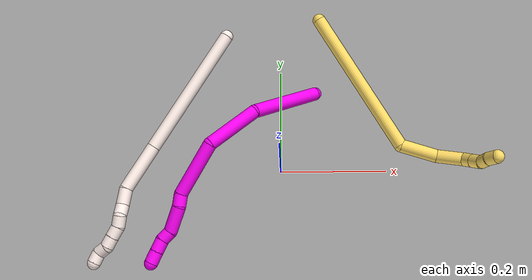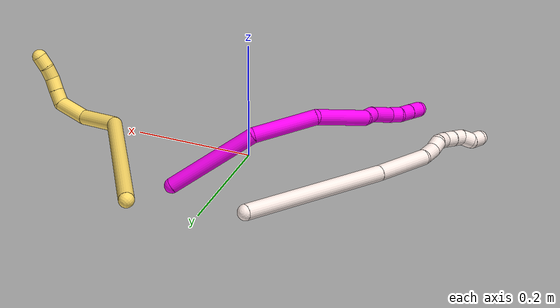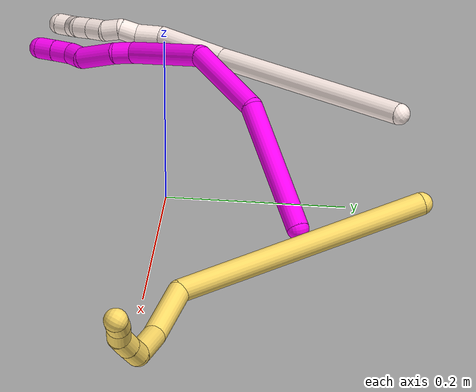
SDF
<sdf version="1.7">
 <world name="default">
  <model name="5">
   <static>0</static>
   <link name="5">
    <collision name="collision-cylinder-e_1_1_4">
     <pose>0.065672 -0.092274 0.089121 0.802774 0.47314 0.203937</pose>
     <geometry><cylinder><radius>0.0125</radius><length>0.288235</length></cylinder></geometry>
     <surface>
      <friction><ode><mu>1.16</mu><mu2>1.16</mu2><slip1>0</slip1><slip2>0</slip2></ode></friction>
      <contact><ode><kp>1e+06</kp><kd>1</kd><max_vel>0</max_vel><min_depth>0.001</min_depth></ode></contact>
     </surface>
    </collision>
    <visual name="visual-cylinder-e_1_1_4">
     <pose>0.065672 -0.092274 0.089121 0.802774 0.47314 0.203937</pose>
     <geometry><cylinder><radius>0.0125</radius><length>0.288235</length></cylinder></geometry>
     <material><ambient>1 0.858824 0.4 1</ambient></material>
    </visual>
    <collision name="collision-cylinder-e_2_4_5">
     <pose>0.159845 -0.205919 0.177224 1.61845 0.926837 0.965501</pose>
     <geometry><cylinder><radius>0.0125</radius><length>0.071277</length></cylinder></geometry>
     <surface>
      <friction><ode><mu>1.16</mu><mu2>1.16</mu2><slip1>0</slip1><slip2>0</slip2></ode></friction>
      <contact><ode><kp>1e+06</kp><kd>1</kd><max_vel>0</max_vel><min_depth>0.001</min_depth></ode></contact>
     </surface>
    </collision>
    <visual name="visual-cylinder-e_2_4_5">
     <pose>0.159845 -0.205919 0.177224 1.61845 0.926837 0.965501</pose>
     <geometry><cylinder><radius>0.0125</radius><length>0.071277</length></cylinder></geometry>
     <material><ambient>1 0.858824 0.4 1</ambient></material>
    </visual>
    <collision name="collision-cylinder-e_3_5_6">
     <pose>0.213184 -0.234299 0.177376 1.40516 1.29216 1.13643</pose>
     <geometry><cylinder><radius>0.0125</radius><length>0.051669</length></cylinder></geometry>
     <surface>
      <friction><ode><mu>1.16</mu><mu2>1.16</mu2><slip1>0</slip1><slip2>0</slip2></ode></friction>
      <contact><ode><kp>1e+06</kp><kd>1</kd><max_vel>0</max_vel><min_depth>0.001</min_depth></ode></contact>
     </surface>
    </collision>
    <visual name="visual-cylinder-e_3_5_6">
     <pose>0.213184 -0.234299 0.177376 1.40516 1.29216 1.13643</pose>
     <geometry><cylinder><radius>0.0125</radius><length>0.051669</length></cylinder></geometry>
     <material><ambient>1 0.858824 0.4 1</ambient></material>
    </visual>
    <collision name="collision-cylinder-e_4_6_7">
     <pose>0.247691 -0.237871 0.183974 -0.564615 0.984442 -0.308607</pose>
     <geometry><cylinder><radius>0.0125</radius><length>0.023216</length></cylinder></geometry>
     <surface>
      <friction><ode><mu>1.16</mu><mu2>1.16</mu2><slip1>0</slip1><slip2>0</slip2></ode></friction>
      <contact><ode><kp>1e+06</kp><kd>1</kd><max_vel>0</max_vel><min_depth>0.001</min_depth></ode></contact>
     </surface>
    </collision>
    <visual name="visual-cylinder-e_4_6_7">
     <pose>0.247691 -0.237871 0.183974 -0.564615 0.984442 -0.308607</pose>
     <geometry><cylinder><radius>0.0125</radius><length>0.023216</length></cylinder></geometry>
     <material><ambient>1 0.858824 0.4 1</ambient></material>
    </visual>
    <collision name="collision-cylinder-e_5_7_8">
     <pose>0.266809 -0.230562 0.194977 -0.606789 0.947776 -0.318398</pose>
     <geometry><cylinder><radius>0.0125</radius><length>0.02327</length></cylinder></geometry>
     <surface>
      <friction><ode><mu>1.16</mu><mu2>1.16</mu2><slip1>0</slip1><slip2>0</slip2></ode></friction>
      <contact><ode><kp>1e+06</kp><kd>1</kd><max_vel>0</max_vel><min_depth>0.001</min_depth></ode></contact>
     </surface>
    </collision>
    <visual name="visual-cylinder-e_5_7_8">
     <pose>0.266809 -0.230562 0.194977 -0.606789 0.947776 -0.318398</pose>
     <geometry><cylinder><radius>0.0125</radius><length>0.02327</length></cylinder></geometry>
     <material><ambient>1 0.858824 0.4 1</ambient></material>
    </visual>
    <collision name="collision-cylinder-e_6_8_9">
     <pose>0.284369 -0.220279 0.202649 -1.255 0.877023 -0.655721</pose>
     <geometry><cylinder><radius>0.0125</radius><length>0.021099</length></cylinder></geometry>
     <surface>
      <friction><ode><mu>1.16</mu><mu2>1.16</mu2><slip1>0</slip1><slip2>0</slip2></ode></friction>
      <contact><ode><kp>1e+06</kp><kd>1</kd><max_vel>0</max_vel><min_depth>0.001</min_depth></ode></contact>
     </surface>
    </collision>
    <visual name="visual-cylinder-e_6_8_9">
     <pose>0.284369 -0.220279 0.202649 -1.255 0.877023 -0.655721</pose>
     <geometry><cylinder><radius>0.0125</radius><length>0.021099</length></cylinder></geometry>
     <material><ambient>1 0.858824 0.4 1</ambient></material>
    </visual>
    <collision name="collision-cylinder-e_7_9_2">
     <pose>0.301932 -0.209451 0.206712 -1.15155 1.09804 -0.756042</pose>
     <geometry><cylinder><radius>0.0125</radius><length>0.021234</length></cylinder></geometry>
     <surface>
      <friction><ode><mu>1.16</mu><mu2>1.16</mu2><slip1>0</slip1><slip2>0</slip2></ode></friction>
      <contact><ode><kp>1e+06</kp><kd>1</kd><max_vel>0</max_vel><min_depth>0.001</min_depth></ode></contact>
     </surface>
    </collision>
    <visual name="visual-cylinder-e_7_9_2">
     <pose>0.301932 -0.209451 0.206712 -1.15155 1.09804 -0.756042</pose>
     <geometry><cylinder><radius>0.0125</radius><length>0.021234</length></cylinder></geometry>
     <material><ambient>1 0.858824 0.4 1</ambient></material>
    </visual>
    <collision name="collision-sphere-2">
     <pose>0.311385 -0.205035 0.20868 0 -0 0</pose>
     <geometry><sphere><radius>0.0125</radius></sphere></geometry>
     <surface>
      <friction><ode><mu>1.16</mu><mu2>1.16</mu2><slip1>0</slip1><slip2>0</slip2></ode></friction>
      <contact><ode><kp>1e+06</kp><kd>1</kd><max_vel>0</max_vel><min_depth>0.001</min_depth></ode></contact>
     </surface>
    </collision>
    <visual name="visual-sphere-2">
     <pose>0.311385 -0.205035 0.20868 0 -0 0</pose>
     <geometry><sphere><radius>0.0125</radius></sphere></geometry>
     <material><ambient>1 0.858824 0.4 1</ambient></material>
    </visual>
    <collision name="collision-sphere-9">
     <pose>0.29248 -0.213867 0.204744 0 -0 0</pose>
     <geometry><sphere><radius>0.0125</radius></sphere></geometry>
     <surface>
      <friction><ode><mu>1.16</mu><mu2>1.16</mu2><slip1>0</slip1><slip2>0</slip2></ode></friction>
      <contact><ode><kp>1e+06</kp><kd>1</kd><max_vel>0</max_vel><min_depth>0.001</min_depth></ode></contact>
     </surface>
    </collision>
    <visual name="visual-sphere-9">
     <pose>0.29248 -0.213867 0.204744 0 -0 0</pose>
     <geometry><sphere><radius>0.0125</radius></sphere></geometry>
     <material><ambient>1 0.858824 0.4 1</ambient></material>
    </visual>
    <collision name="collision-sphere-4">
     <pose>0.131344 -0.184547 0.178243 0 -0 0</pose>
     <geometry><sphere><radius>0.0125</radius></sphere></geometry>
     <surface>
      <friction><ode><mu>1.16</mu><mu2>1.16</mu2><slip1>0</slip1><slip2>0</slip2></ode></friction>
      <contact><ode><kp>1e+06</kp><kd>1</kd><max_vel>0</max_vel><min_depth>0.001</min_depth></ode></contact>
     </surface>
    </collision>
    <visual name="visual-sphere-4">
     <pose>0.131344 -0.184547 0.178243 0 -0 0</pose>
     <geometry><sphere><radius>0.0125</radius></sphere></geometry>
     <material><ambient>1 0.858824 0.4 1</ambient></material>
    </visual>
    <collision name="collision-sphere-1">
     <geometry><sphere><radius>0.0125</radius></sphere></geometry>
     <surface>
      <friction><ode><mu>1.16</mu><mu2>1.16</mu2><slip1>0</slip1><slip2>0</slip2></ode></friction>
      <contact><ode><kp>1e+06</kp><kd>1</kd><max_vel>0</max_vel><min_depth>0.001</min_depth></ode></contact>
     </surface>
    </collision>
    <visual name="visual-sphere-1">
     <geometry><sphere><radius>0.0125</radius></sphere></geometry>
     <material><ambient>1 0.858824 0.4 1</ambient></material>
    </visual>
    <collision name="collision-sphere-8">
     <pose>0.276258 -0.226691 0.200554 0 -0 0</pose>
     <geometry><sphere><radius>0.0125</radius></sphere></geometry>
     <surface>
      <friction><ode><mu>1.16</mu><mu2>1.16</mu2><slip1>0</slip1><slip2>0</slip2></ode></friction>
      <contact><ode><kp>1e+06</kp><kd>1</kd><max_vel>0</max_vel><min_depth>0.001</min_depth></ode></contact>
     </surface>
    </collision>
    <visual name="visual-sphere-8">
     <pose>0.276258 -0.226691 0.200554 0 -0 0</pose>
     <geometry><sphere><radius>0.0125</radius></sphere></geometry>
     <material><ambient>1 0.858824 0.4 1</ambient></material>
    </visual>
    <collision name="collision-sphere-5">
     <pose>0.188346 -0.227291 0.176205 0 -0 0</pose>
     <geometry><sphere><radius>0.0125</radius></sphere></geometry>
     <surface>
      <friction><ode><mu>1.16</mu><mu2>1.16</mu2><slip1>0</slip1><slip2>0</slip2></ode></friction>
      <contact><ode><kp>1e+06</kp><kd>1</kd><max_vel>0</max_vel><min_depth>0.001</min_depth></ode></contact>
     </surface>
    </collision>
    <visual name="visual-sphere-5">
     <pose>0.188346 -0.227291 0.176205 0 -0 0</pose>
     <geometry><sphere><radius>0.0125</radius></sphere></geometry>
     <material><ambient>1 0.858824 0.4 1</ambient></material>
    </visual>
    <collision name="collision-sphere-6">
     <pose>0.238022 -0.241308 0.178548 0 -0 0</pose>
     <geometry><sphere><radius>0.0125</radius></sphere></geometry>
     <surface>
      <friction><ode><mu>1.16</mu><mu2>1.16</mu2><slip1>0</slip1><slip2>0</slip2></ode></friction>
      <contact><ode><kp>1e+06</kp><kd>1</kd><max_vel>0</max_vel><min_depth>0.001</min_depth></ode></contact>
     </surface>
    </collision>
    <visual name="visual-sphere-6">
     <pose>0.238022 -0.241308 0.178548 0 -0 0</pose>
     <geometry><sphere><radius>0.0125</radius></sphere></geometry>
     <material><ambient>1 0.858824 0.4 1</ambient></material>
    </visual>
    <collision name="collision-sphere-7">
     <pose>0.25736 -0.234434 0.1894 0 -0 0</pose>
     <geometry><sphere><radius>0.0125</radius></sphere></geometry>
     <surface>
      <friction><ode><mu>1.16</mu><mu2>1.16</mu2><slip1>0</slip1><slip2>0</slip2></ode></friction>
      <contact><ode><kp>1e+06</kp><kd>1</kd><max_vel>0</max_vel><min_depth>0.001</min_depth></ode></contact>
     </surface>
    </collision>
    <visual name="visual-sphere-7">
     <pose>0.25736 -0.234434 0.1894 0 -0 0</pose>
     <geometry><sphere><radius>0.0125</radius></sphere></geometry>
     <material><ambient>1 0.858824 0.4 1</ambient></material>
    </visual>
    <inertial>
     <pose>0.131415 -0.146725 0.129916 0 -0 0</pose>
     <mass>0.5</mass>
     <inertia>
      <ixx>0.00217</ixx>
      <ixy>0</ixy>
      <ixz>0</ixz>
      <iyy>0.001902</iyy>
      <iyz>0</iyz>
      <izz>0.000362</izz>
     </inertia>
    </inertial>
   </link>
   <pose>0.075465 0.286337 0.060342 1.15473 -0.460214 -0.042678</pose>
  </model>
  <model name="10">
   <static>0</static>
   <link name="10">
    <collision name="collision-cylinder-e_1_1_4">
     <pose>-0.04087 -0.064691 0.006175 1.47564 -0.561412 -0.512686</pose>
     <geometry><cylinder><radius>0.0125</radius><length>0.153538</length></cylinder></geometry>
     <surface>
      <friction><ode><mu>1.16</mu><mu2>1.16</mu2><slip1>0</slip1><slip2>0</slip2></ode></friction>
      <contact><ode><kp>1e+06</kp><kd>1</kd><max_vel>0</max_vel><min_depth>0.001</min_depth></ode></contact>
     </surface>
    </collision>
    <visual name="visual-cylinder-e_1_1_4">
     <pose>-0.04087 -0.064691 0.006175 1.47564 -0.561412 -0.512686</pose>
     <geometry><cylinder><radius>0.0125</radius><length>0.153538</length></cylinder></geometry>
     <material><ambient>1 0 0.964706 1</ambient></material>
    </visual>
    <collision name="collision-cylinder-e_2_4_5">
     <pose>-0.125298 -0.157407 0.008985 1.69026 -0.995817 -1.09947</pose>
     <geometry><cylinder><radius>0.0125</radius><length>0.103805</length></cylinder></geometry>
     <surface>
      <friction><ode><mu>1.16</mu><mu2>1.16</mu2><slip1>0</slip1><slip2>0</slip2></ode></friction>
      <contact><ode><kp>1e+06</kp><kd>1</kd><max_vel>0</max_vel><min_depth>0.001</min_depth></ode></contact>
     </surface>
    </collision>
    <visual name="visual-cylinder-e_2_4_5">
     <pose>-0.125298 -0.157407 0.008985 1.69026 -0.995817 -1.09947</pose>
     <geometry><cylinder><radius>0.0125</radius><length>0.103805</length></cylinder></geometry>
     <material><ambient>1 0 0.964706 1</ambient></material>
    </visual>
    <collision name="collision-cylinder-e_3_5_6">
     <pose>-0.218277 -0.188919 -0.010891 2.93344 -1.24174 -2.85155</pose>
     <geometry><cylinder><radius>0.0125</radius><length>0.104449</length></cylinder></geometry>
     <surface>
      <friction><ode><mu>1.16</mu><mu2>1.16</mu2><slip1>0</slip1><slip2>0</slip2></ode></friction>
      <contact><ode><kp>1e+06</kp><kd>1</kd><max_vel>0</max_vel><min_depth>0.001</min_depth></ode></contact>
     </surface>
    </collision>
    <visual name="visual-cylinder-e_3_5_6">
     <pose>-0.218277 -0.188919 -0.010891 2.93344 -1.24174 -2.85155</pose>
     <geometry><cylinder><radius>0.0125</radius><length>0.104449</length></cylinder></geometry>
     <material><ambient>1 0 0.964706 1</ambient></material>
    </visual>
    <collision name="collision-cylinder-e_4_6_7">
     <pose>-0.276105 -0.193326 -0.035126 3.02312 -0.82414 -2.87188</pose>
     <geometry><cylinder><radius>0.0125</radius><length>0.022902</length></cylinder></geometry>
     <surface>
      <friction><ode><mu>1.16</mu><mu2>1.16</mu2><slip1>0</slip1><slip2>0</slip2></ode></friction>
      <contact><ode><kp>1e+06</kp><kd>1</kd><max_vel>0</max_vel><min_depth>0.001</min_depth></ode></contact>
     </surface>
    </collision>
    <visual name="visual-cylinder-e_4_6_7">
     <pose>-0.276105 -0.193326 -0.035126 3.02312 -0.82414 -2.87188</pose>
     <geometry><cylinder><radius>0.0125</radius><length>0.022902</length></cylinder></geometry>
     <material><ambient>1 0 0.964706 1</ambient></material>
    </visual>
    <collision name="collision-cylinder-e_5_7_8">
     <pose>-0.305944 -0.19299 -0.054081 -3.03037 -1.08557 2.95755</pose>
     <geometry><cylinder><radius>0.0125</radius><length>0.048464</length></cylinder></geometry>
     <surface>
      <friction><ode><mu>1.16</mu><mu2>1.16</mu2><slip1>0</slip1><slip2>0</slip2></ode></friction>
      <contact><ode><kp>1e+06</kp><kd>1</kd><max_vel>0</max_vel><min_depth>0.001</min_depth></ode></contact>
     </surface>
    </collision>
    <visual name="visual-cylinder-e_5_7_8">
     <pose>-0.305944 -0.19299 -0.054081 -3.03037 -1.08557 2.95755</pose>
     <geometry><cylinder><radius>0.0125</radius><length>0.048464</length></cylinder></geometry>
     <material><ambient>1 0 0.964706 1</ambient></material>
    </visual>
    <collision name="collision-cylinder-e_6_8_9">
     <pose>-0.337542 -0.194346 -0.06666 2.04744 -1.28948 -1.77993</pose>
     <geometry><cylinder><radius>0.0125</radius><length>0.021157</length></cylinder></geometry>
     <surface>
      <friction><ode><mu>1.16</mu><mu2>1.16</mu2><slip1>0</slip1><slip2>0</slip2></ode></friction>
      <contact><ode><kp>1e+06</kp><kd>1</kd><max_vel>0</max_vel><min_depth>0.001</min_depth></ode></contact>
     </surface>
    </collision>
    <visual name="visual-cylinder-e_6_8_9">
     <pose>-0.337542 -0.194346 -0.06666 2.04744 -1.28948 -1.77993</pose>
     <geometry><cylinder><radius>0.0125</radius><length>0.021157</length></cylinder></geometry>
     <material><ambient>1 0 0.964706 1</ambient></material>
    </visual>
    <collision name="collision-cylinder-e_7_9_10">
     <pose>-0.357636 -0.199421 -0.073101 2.69082 -1.05288 -2.39002</pose>
     <geometry><cylinder><radius>0.0125</radius><length>0.022862</length></cylinder></geometry>
     <surface>
      <friction><ode><mu>1.16</mu><mu2>1.16</mu2><slip1>0</slip1><slip2>0</slip2></ode></friction>
      <contact><ode><kp>1e+06</kp><kd>1</kd><max_vel>0</max_vel><min_depth>0.001</min_depth></ode></contact>
     </surface>
    </collision>
    <visual name="visual-cylinder-e_7_9_10">
     <pose>-0.357636 -0.199421 -0.073101 2.69082 -1.05288 -2.39002</pose>
     <geometry><cylinder><radius>0.0125</radius><length>0.022862</length></cylinder></geometry>
     <material><ambient>1 0 0.964706 1</ambient></material>
    </visual>
    <collision name="collision-cylinder-e_8_10_2">
     <pose>-0.377493 -0.204219 -0.083319 2.71433 -1.0548 -2.42849</pose>
     <geometry><cylinder><radius>0.0125</radius><length>0.022823</length></cylinder></geometry>
     <surface>
      <friction><ode><mu>1.16</mu><mu2>1.16</mu2><slip1>0</slip1><slip2>0</slip2></ode></friction>
      <contact><ode><kp>1e+06</kp><kd>1</kd><max_vel>0</max_vel><min_depth>0.001</min_depth></ode></contact>
     </surface>
    </collision>
    <visual name="visual-cylinder-e_8_10_2">
     <pose>-0.377493 -0.204219 -0.083319 2.71433 -1.0548 -2.42849</pose>
     <geometry><cylinder><radius>0.0125</radius><length>0.022823</length></cylinder></geometry>
     <material><ambient>1 0 0.964706 1</ambient></material>
    </visual>
    <collision name="collision-sphere-2">
     <pose>-0.387419 -0.206552 -0.088444 0 -0 0</pose>
     <geometry><sphere><radius>0.0125</radius></sphere></geometry>
     <surface>
      <friction><ode><mu>1.16</mu><mu2>1.16</mu2><slip1>0</slip1><slip2>0</slip2></ode></friction>
      <contact><ode><kp>1e+06</kp><kd>1</kd><max_vel>0</max_vel><min_depth>0.001</min_depth></ode></contact>
     </surface>
    </collision>
    <visual name="visual-sphere-2">
     <pose>-0.387419 -0.206552 -0.088444 0 -0 0</pose>
     <geometry><sphere><radius>0.0125</radius></sphere></geometry>
     <material><ambient>1 0 0.964706 1</ambient></material>
    </visual>
    <collision name="collision-sphere-10">
     <pose>-0.367568 -0.201886 -0.078195 0 -0 0</pose>
     <geometry><sphere><radius>0.0125</radius></sphere></geometry>
     <surface>
      <friction><ode><mu>1.16</mu><mu2>1.16</mu2><slip1>0</slip1><slip2>0</slip2></ode></friction>
      <contact><ode><kp>1e+06</kp><kd>1</kd><max_vel>0</max_vel><min_depth>0.001</min_depth></ode></contact>
     </surface>
    </collision>
    <visual name="visual-sphere-10">
     <pose>-0.367568 -0.201886 -0.078195 0 -0 0</pose>
     <geometry><sphere><radius>0.0125</radius></sphere></geometry>
     <material><ambient>1 0 0.964706 1</ambient></material>
    </visual>
    <collision name="collision-sphere-9">
     <pose>-0.347704 -0.196955 -0.068008 0 -0 0</pose>
     <geometry><sphere><radius>0.0125</radius></sphere></geometry>
     <surface>
      <friction><ode><mu>1.16</mu><mu2>1.16</mu2><slip1>0</slip1><slip2>0</slip2></ode></friction>
      <contact><ode><kp>1e+06</kp><kd>1</kd><max_vel>0</max_vel><min_depth>0.001</min_depth></ode></contact>
     </surface>
    </collision>
    <visual name="visual-sphere-9">
     <pose>-0.347704 -0.196955 -0.068008 0 -0 0</pose>
     <geometry><sphere><radius>0.0125</radius></sphere></geometry>
     <material><ambient>1 0 0.964706 1</ambient></material>
    </visual>
    <collision name="collision-sphere-4">
     <pose>-0.081741 -0.129383 0.012349 0 -0 0</pose>
     <geometry><sphere><radius>0.0125</radius></sphere></geometry>
     <surface>
      <friction><ode><mu>1.16</mu><mu2>1.16</mu2><slip1>0</slip1><slip2>0</slip2></ode></friction>
      <contact><ode><kp>1e+06</kp><kd>1</kd><max_vel>0</max_vel><min_depth>0.001</min_depth></ode></contact>
     </surface>
    </collision>
    <visual name="visual-sphere-4">
     <pose>-0.081741 -0.129383 0.012349 0 -0 0</pose>
     <geometry><sphere><radius>0.0125</radius></sphere></geometry>
     <material><ambient>1 0 0.964706 1</ambient></material>
    </visual>
    <collision name="collision-sphere-1">
     <geometry><sphere><radius>0.0125</radius></sphere></geometry>
     <surface>
      <friction><ode><mu>1.16</mu><mu2>1.16</mu2><slip1>0</slip1><slip2>0</slip2></ode></friction>
      <contact><ode><kp>1e+06</kp><kd>1</kd><max_vel>0</max_vel><min_depth>0.001</min_depth></ode></contact>
     </surface>
    </collision>
    <visual name="visual-sphere-1">
     <geometry><sphere><radius>0.0125</radius></sphere></geometry>
     <material><ambient>1 0 0.964706 1</ambient></material>
    </visual>
    <collision name="collision-sphere-8">
     <pose>-0.327379 -0.191736 -0.065313 0 -0 0</pose>
     <geometry><sphere><radius>0.0125</radius></sphere></geometry>
     <surface>
      <friction><ode><mu>1.16</mu><mu2>1.16</mu2><slip1>0</slip1><slip2>0</slip2></ode></friction>
      <contact><ode><kp>1e+06</kp><kd>1</kd><max_vel>0</max_vel><min_depth>0.001</min_depth></ode></contact>
     </surface>
    </collision>
    <visual name="visual-sphere-8">
     <pose>-0.327379 -0.191736 -0.065313 0 -0 0</pose>
     <geometry><sphere><radius>0.0125</radius></sphere></geometry>
     <material><ambient>1 0 0.964706 1</ambient></material>
    </visual>
    <collision name="collision-sphere-5">
     <pose>-0.168854 -0.185431 0.005621 0 -0 0</pose>
     <geometry><sphere><radius>0.0125</radius></sphere></geometry>
     <surface>
      <friction><ode><mu>1.16</mu><mu2>1.16</mu2><slip1>0</slip1><slip2>0</slip2></ode></friction>
      <contact><ode><kp>1e+06</kp><kd>1</kd><max_vel>0</max_vel><min_depth>0.001</min_depth></ode></contact>
     </surface>
    </collision>
    <visual name="visual-sphere-5">
     <pose>-0.168854 -0.185431 0.005621 0 -0 0</pose>
     <geometry><sphere><radius>0.0125</radius></sphere></geometry>
     <material><ambient>1 0 0.964706 1</ambient></material>
    </visual>
    <collision name="collision-sphere-6">
     <pose>-0.2677 -0.192406 -0.027403 0 -0 0</pose>
     <geometry><sphere><radius>0.0125</radius></sphere></geometry>
     <surface>
      <friction><ode><mu>1.16</mu><mu2>1.16</mu2><slip1>0</slip1><slip2>0</slip2></ode></friction>
      <contact><ode><kp>1e+06</kp><kd>1</kd><max_vel>0</max_vel><min_depth>0.001</min_depth></ode></contact>
     </surface>
    </collision>
    <visual name="visual-sphere-6">
     <pose>-0.2677 -0.192406 -0.027403 0 -0 0</pose>
     <geometry><sphere><radius>0.0125</radius></sphere></geometry>
     <material><ambient>1 0 0.964706 1</ambient></material>
    </visual>
    <collision name="collision-sphere-7">
     <pose>-0.284509 -0.194245 -0.042849 0 -0 0</pose>
     <geometry><sphere><radius>0.0125</radius></sphere></geometry>
     <surface>
      <friction><ode><mu>1.16</mu><mu2>1.16</mu2><slip1>0</slip1><slip2>0</slip2></ode></friction>
      <contact><ode><kp>1e+06</kp><kd>1</kd><max_vel>0</max_vel><min_depth>0.001</min_depth></ode></contact>
     </surface>
    </collision>
    <visual name="visual-sphere-7">
     <pose>-0.284509 -0.194245 -0.042849 0 -0 0</pose>
     <geometry><sphere><radius>0.0125</radius></sphere></geometry>
     <material><ambient>1 0 0.964706 1</ambient></material>
    </visual>
    <inertial>
     <pose>-0.174328 -0.146234 -0.015331 0 -0 0</pose>
     <mass>0.5</mass>
     <inertia><ixx>-3e-06</ixx><ixy>0</ixy><ixz>0</ixz><iyy>8.8e-05</iyy><iyz>0</iyz><izz>0.000668</izz></inertia>
    </inertial>
   </link>
   <pose>0.066186 0.153071 0.012508 -1.63974 -0.422874 0.669342</pose>
  </model>
  <model name="11">
   <static>0</static>
   <link name="11">
    <collision name="collision-cylinder-e_1_1_4">
     <pose>-0.054821 -0.065832 0.093427 0.613825 -0.447243 -0.143905</pose>
     <geometry><cylinder><radius>0.0125</radius><length>0.253518</length></cylinder></geometry>
     <surface>
      <friction><ode><mu>1.16</mu><mu2>1.16</mu2><slip1>0</slip1><slip2>0</slip2></ode></friction>
      <contact><ode><kp>1e+06</kp><kd>1</kd><max_vel>0</max_vel><min_depth>0.001</min_depth></ode></contact>
     </surface>
    </collision>
    <visual name="visual-cylinder-e_1_1_4">
     <pose>-0.054821 -0.065832 0.093427 0.613825 -0.447243 -0.143905</pose>
     <geometry><cylinder><radius>0.0125</radius><length>0.253518</length></cylinder></geometry>
     <material><ambient>1 0.933333 0.909804 1</ambient></material>
    </visual>
    <collision name="collision-cylinder-e_2_4_5">
     <pose>-0.131677 -0.15531 0.219665 0.624486 -0.498869 -0.164092</pose>
     <geometry><cylinder><radius>0.0125</radius><length>0.092113</length></cylinder></geometry>
     <surface>
      <friction><ode><mu>1.16</mu><mu2>1.16</mu2><slip1>0</slip1><slip2>0</slip2></ode></friction>
      <contact><ode><kp>1e+06</kp><kd>1</kd><max_vel>0</max_vel><min_depth>0.001</min_depth></ode></contact>
     </surface>
    </collision>
    <visual name="visual-cylinder-e_2_4_5">
     <pose>-0.131677 -0.15531 0.219665 0.624486 -0.498869 -0.164092</pose>
     <geometry><cylinder><radius>0.0125</radius><length>0.092113</length></cylinder></geometry>
     <material><ambient>1 0.933333 0.909804 1</ambient></material>
    </visual>
    <collision name="collision-cylinder-e_3_5_6">
     <pose>-0.162522 -0.181569 0.26506 0.204713 -0.600903 -0.063627</pose>
     <geometry><cylinder><radius>0.0125</radius><length>0.031164</length></cylinder></geometry>
     <surface>
      <friction><ode><mu>1.16</mu><mu2>1.16</mu2><slip1>0</slip1><slip2>0</slip2></ode></friction>
      <contact><ode><kp>1e+06</kp><kd>1</kd><max_vel>0</max_vel><min_depth>0.001</min_depth></ode></contact>
     </surface>
    </collision>
    <visual name="visual-cylinder-e_3_5_6">
     <pose>-0.162522 -0.181569 0.26506 0.204713 -0.600903 -0.063627</pose>
     <geometry><cylinder><radius>0.0125</radius><length>0.031164</length></cylinder></geometry>
     <material><ambient>1 0.933333 0.909804 1</ambient></material>
    </visual>
    <collision name="collision-cylinder-e_4_6_7">
     <pose>-0.179381 -0.185945 0.283933 0.273335 -0.889116 -0.130836</pose>
     <geometry><cylinder><radius>0.0125</radius><length>0.020732</length></cylinder></geometry>
     <surface>
      <friction><ode><mu>1.16</mu><mu2>1.16</mu2><slip1>0</slip1><slip2>0</slip2></ode></friction>
      <contact><ode><kp>1e+06</kp><kd>1</kd><max_vel>0</max_vel><min_depth>0.001</min_depth></ode></contact>
     </surface>
    </collision>
    <visual name="visual-cylinder-e_4_6_7">
     <pose>-0.179381 -0.185945 0.283933 0.273335 -0.889116 -0.130836</pose>
     <geometry><cylinder><radius>0.0125</radius><length>0.020732</length></cylinder></geometry>
     <material><ambient>1 0.933333 0.909804 1</ambient></material>
    </visual>
    <collision name="collision-cylinder-e_5_7_8">
     <pose>-0.191464 -0.189132 0.299764 0.148191 -0.396032 -0.029786</pose>
     <geometry><cylinder><radius>0.0125</radius><length>0.020915</length></cylinder></geometry>
     <surface>
      <friction><ode><mu>1.16</mu><mu2>1.16</mu2><slip1>0</slip1><slip2>0</slip2></ode></friction>
      <contact><ode><kp>1e+06</kp><kd>1</kd><max_vel>0</max_vel><min_depth>0.001</min_depth></ode></contact>
     </surface>
    </collision>
    <visual name="visual-cylinder-e_5_7_8">
     <pose>-0.191464 -0.189132 0.299764 0.148191 -0.396032 -0.029786</pose>
     <geometry><cylinder><radius>0.0125</radius><length>0.020915</length></cylinder></geometry>
     <material><ambient>1 0.933333 0.909804 1</ambient></material>
    </visual>
    <collision name="collision-cylinder-e_6_8_9">
     <pose>-0.199161 -0.195653 0.318005 0.529903 -0.348429 -0.095435</pose>
     <geometry><cylinder><radius>0.0125</radius><length>0.021452</length></cylinder></geometry>
     <surface>
      <friction><ode><mu>1.16</mu><mu2>1.16</mu2><slip1>0</slip1><slip2>0</slip2></ode></friction>
      <contact><ode><kp>1e+06</kp><kd>1</kd><max_vel>0</max_vel><min_depth>0.001</min_depth></ode></contact>
     </surface>
    </collision>
    <visual name="visual-cylinder-e_6_8_9">
     <pose>-0.199161 -0.195653 0.318005 0.529903 -0.348429 -0.095435</pose>
     <geometry><cylinder><radius>0.0125</radius><length>0.021452</length></cylinder></geometry>
     <material><ambient>1 0.933333 0.909804 1</ambient></material>
    </visual>
    <collision name="collision-cylinder-e_7_9_10">
     <pose>-0.206296 -0.205182 0.33501 0.490279 -0.353426 -0.089289</pose>
     <geometry><cylinder><radius>0.0125</radius><length>0.020071</length></cylinder></geometry>
     <surface>
      <friction><ode><mu>1.16</mu><mu2>1.16</mu2><slip1>0</slip1><slip2>0</slip2></ode></friction>
      <contact><ode><kp>1e+06</kp><kd>1</kd><max_vel>0</max_vel><min_depth>0.001</min_depth></ode></contact>
     </surface>
    </collision>
    <visual name="visual-cylinder-e_7_9_10">
     <pose>-0.206296 -0.205182 0.33501 0.490279 -0.353426 -0.089289</pose>
     <geometry><cylinder><radius>0.0125</radius><length>0.020071</length></cylinder></geometry>
     <material><ambient>1 0.933333 0.909804 1</ambient></material>
    </visual>
    <collision name="collision-cylinder-e_8_10_11">
     <pose>-0.208868 -0.21682 0.350198 0.808387 0.09024 0.038621</pose>
     <geometry><cylinder><radius>0.0125</radius><length>0.020009</length></cylinder></geometry>
     <surface>
      <friction><ode><mu>1.16</mu><mu2>1.16</mu2><slip1>0</slip1><slip2>0</slip2></ode></friction>
      <contact><ode><kp>1e+06</kp><kd>1</kd><max_vel>0</max_vel><min_depth>0.001</min_depth></ode></contact>
     </surface>
    </collision>
    <visual name="visual-cylinder-e_8_10_11">
     <pose>-0.208868 -0.21682 0.350198 0.808387 0.09024 0.038621</pose>
     <geometry><cylinder><radius>0.0125</radius><length>0.020009</length></cylinder></geometry>
     <material><ambient>1 0.933333 0.909804 1</ambient></material>
    </visual>
    <collision name="collision-cylinder-e_9_11_2">
     <pose>-0.212411 -0.228229 0.365007 0.487578 -0.459961 -0.116338</pose>
     <geometry><cylinder><radius>0.0125</radius><length>0.020026</length></cylinder></geometry>
     <surface>
      <friction><ode><mu>1.16</mu><mu2>1.16</mu2><slip1>0</slip1><slip2>0</slip2></ode></friction>
      <contact><ode><kp>1e+06</kp><kd>1</kd><max_vel>0</max_vel><min_depth>0.001</min_depth></ode></contact>
     </surface>
    </collision>
    <visual name="visual-cylinder-e_9_11_2">
     <pose>-0.212411 -0.228229 0.365007 0.487578 -0.459961 -0.116338</pose>
     <geometry><cylinder><radius>0.0125</radius><length>0.020026</length></cylinder></geometry>
     <material><ambient>1 0.933333 0.909804 1</ambient></material>
    </visual>
    <collision name="collision-sphere-2">
     <pose>-0.216856 -0.232433 0.372933 0 -0 0</pose>
     <geometry><sphere><radius>0.0125</radius></sphere></geometry>
     <surface>
      <friction><ode><mu>1.16</mu><mu2>1.16</mu2><slip1>0</slip1><slip2>0</slip2></ode></friction>
      <contact><ode><kp>1e+06</kp><kd>1</kd><max_vel>0</max_vel><min_depth>0.001</min_depth></ode></contact>
     </surface>
    </collision>
    <visual name="visual-sphere-2">
     <pose>-0.216856 -0.232433 0.372933 0 -0 0</pose>
     <geometry><sphere><radius>0.0125</radius></sphere></geometry>
     <material><ambient>1 0.933333 0.909804 1</ambient></material>
    </visual>
    <collision name="collision-sphere-11">
     <pose>-0.207966 -0.224026 0.35708 0 -0 0</pose>
     <geometry><sphere><radius>0.0125</radius></sphere></geometry>
     <surface>
      <friction><ode><mu>1.16</mu><mu2>1.16</mu2><slip1>0</slip1><slip2>0</slip2></ode></friction>
      <contact><ode><kp>1e+06</kp><kd>1</kd><max_vel>0</max_vel><min_depth>0.001</min_depth></ode></contact>
     </surface>
    </collision>
    <visual name="visual-sphere-11">
     <pose>-0.207966 -0.224026 0.35708 0 -0 0</pose>
     <geometry><sphere><radius>0.0125</radius></sphere></geometry>
     <material><ambient>1 0.933333 0.909804 1</ambient></material>
    </visual>
    <collision name="collision-sphere-10">
     <pose>-0.209769 -0.209615 0.343317 0 -0 0</pose>
     <geometry><sphere><radius>0.0125</radius></sphere></geometry>
     <surface>
      <friction><ode><mu>1.16</mu><mu2>1.16</mu2><slip1>0</slip1><slip2>0</slip2></ode></friction>
      <contact><ode><kp>1e+06</kp><kd>1</kd><max_vel>0</max_vel><min_depth>0.001</min_depth></ode></contact>
     </surface>
    </collision>
    <visual name="visual-sphere-10">
     <pose>-0.209769 -0.209615 0.343317 0 -0 0</pose>
     <geometry><sphere><radius>0.0125</radius></sphere></geometry>
     <material><ambient>1 0.933333 0.909804 1</ambient></material>
    </visual>
    <collision name="collision-sphere-9">
     <pose>-0.202823 -0.200748 0.326704 0 -0 0</pose>
     <geometry><sphere><radius>0.0125</radius></sphere></geometry>
     <surface>
      <friction><ode><mu>1.16</mu><mu2>1.16</mu2><slip1>0</slip1><slip2>0</slip2></ode></friction>
      <contact><ode><kp>1e+06</kp><kd>1</kd><max_vel>0</max_vel><min_depth>0.001</min_depth></ode></contact>
     </surface>
    </collision>
    <visual name="visual-sphere-9">
     <pose>-0.202823 -0.200748 0.326704 0 -0 0</pose>
     <geometry><sphere><radius>0.0125</radius></sphere></geometry>
     <material><ambient>1 0.933333 0.909804 1</ambient></material>
    </visual>
    <collision name="collision-sphere-4">
     <pose>-0.109642 -0.131663 0.186855 0 -0 0</pose>
     <geometry><sphere><radius>0.0125</radius></sphere></geometry>
     <surface>
      <friction><ode><mu>1.16</mu><mu2>1.16</mu2><slip1>0</slip1><slip2>0</slip2></ode></friction>
      <contact><ode><kp>1e+06</kp><kd>1</kd><max_vel>0</max_vel><min_depth>0.001</min_depth></ode></contact>
     </surface>
    </collision>
    <visual name="visual-sphere-4">
     <pose>-0.109642 -0.131663 0.186855 0 -0 0</pose>
     <geometry><sphere><radius>0.0125</radius></sphere></geometry>
     <material><ambient>1 0.933333 0.909804 1</ambient></material>
    </visual>
    <collision name="collision-sphere-1">
     <geometry><sphere><radius>0.0125</radius></sphere></geometry>
     <surface>
      <friction><ode><mu>1.16</mu><mu2>1.16</mu2><slip1>0</slip1><slip2>0</slip2></ode></friction>
      <contact><ode><kp>1e+06</kp><kd>1</kd><max_vel>0</max_vel><min_depth>0.001</min_depth></ode></contact>
     </surface>
    </collision>
    <visual name="visual-sphere-1">
     <geometry><sphere><radius>0.0125</radius></sphere></geometry>
     <material><ambient>1 0.933333 0.909804 1</ambient></material>
    </visual>
    <collision name="collision-sphere-8">
     <pose>-0.195498 -0.190557 0.309307 0 -0 0</pose>
     <geometry><sphere><radius>0.0125</radius></sphere></geometry>
     <surface>
      <friction><ode><mu>1.16</mu><mu2>1.16</mu2><slip1>0</slip1><slip2>0</slip2></ode></friction>
      <contact><ode><kp>1e+06</kp><kd>1</kd><max_vel>0</max_vel><min_depth>0.001</min_depth></ode></contact>
     </surface>
    </collision>
    <visual name="visual-sphere-8">
     <pose>-0.195498 -0.190557 0.309307 0 -0 0</pose>
     <geometry><sphere><radius>0.0125</radius></sphere></geometry>
     <material><ambient>1 0.933333 0.909804 1</ambient></material>
    </visual>
    <collision name="collision-sphere-5">
     <pose>-0.153712 -0.178956 0.252476 0 -0 0</pose>
     <geometry><sphere><radius>0.0125</radius></sphere></geometry>
     <surface>
      <friction><ode><mu>1.16</mu><mu2>1.16</mu2><slip1>0</slip1><slip2>0</slip2></ode></friction>
      <contact><ode><kp>1e+06</kp><kd>1</kd><max_vel>0</max_vel><min_depth>0.001</min_depth></ode></contact>
     </surface>
    </collision>
    <visual name="visual-sphere-5">
     <pose>-0.153712 -0.178956 0.252476 0 -0 0</pose>
     <geometry><sphere><radius>0.0125</radius></sphere></geometry>
     <material><ambient>1 0.933333 0.909804 1</ambient></material>
    </visual>
    <collision name="collision-sphere-6">
     <pose>-0.171332 -0.184182 0.277644 0 -0 0</pose>
     <geometry><sphere><radius>0.0125</radius></sphere></geometry>
     <surface>
      <friction><ode><mu>1.16</mu><mu2>1.16</mu2><slip1>0</slip1><slip2>0</slip2></ode></friction>
      <contact><ode><kp>1e+06</kp><kd>1</kd><max_vel>0</max_vel><min_depth>0.001</min_depth></ode></contact>
     </surface>
    </collision>
    <visual name="visual-sphere-6">
     <pose>-0.171332 -0.184182 0.277644 0 -0 0</pose>
     <geometry><sphere><radius>0.0125</radius></sphere></geometry>
     <material><ambient>1 0.933333 0.909804 1</ambient></material>
    </visual>
    <collision name="collision-sphere-7">
     <pose>-0.18743 -0.187708 0.290222 0 -0 0</pose>
     <geometry><sphere><radius>0.0125</radius></sphere></geometry>
     <surface>
      <friction><ode><mu>1.16</mu><mu2>1.16</mu2><slip1>0</slip1><slip2>0</slip2></ode></friction>
      <contact><ode><kp>1e+06</kp><kd>1</kd><max_vel>0</max_vel><min_depth>0.001</min_depth></ode></contact>
     </surface>
    </collision>
    <visual name="visual-sphere-7">
     <pose>-0.18743 -0.187708 0.290222 0 -0 0</pose>
     <geometry><sphere><radius>0.0125</radius></sphere></geometry>
     <material><ambient>1 0.933333 0.909804 1</ambient></material>
    </visual>
    <inertial>
     <pose>-0.111323 -0.123378 0.184397 0 -0 0</pose>
     <mass>0.5</mass>
     <inertia>
      <ixx>0.001087</ixx>
      <ixy>0</ixy>
      <ixz>0</ixz>
      <iyy>0.00102</iyy>
      <iyz>0</iyz>
      <izz>0.001409</izz>
     </inertia>
    </inertial>
   </link>
   <pose>-0.102899 0.252729 0.062799 -2.95088 0.864173 1.71768</pose>
  </model>
 </world>
</sdf>
